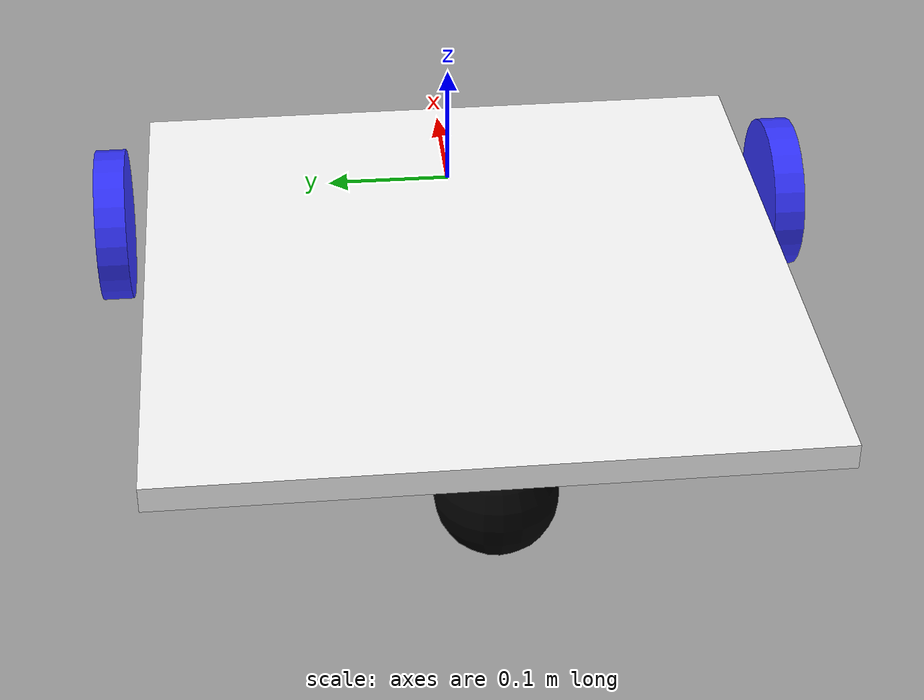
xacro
<?xml version="1.0"?>
<robot xmlns:xacro="http://www.ros.org/wiki/xacro" >

    <xacro:include filename="inertial_macros.xacro"/>

    <material name="white">
        <color rgba="1 1 1 1" />
    </material>

    <material name="orange">
        <color rgba="1 0.3 0.1 1" />
    </material>

    <material name="blue">
        <color rgba="0.2 0.2 1 1" />
    </material>

    <material name="black">
        <color rgba="0 0 0 1" />
    </material>

    <material name="red">
        <color rgba="1 0 0 1"/>
    </material>

    <!-- BASE LINK -->

    <link name="base_link">

    </link>

    <!-- BASE_FOOTPRINT LINK -->

    <joint name="base_footprint_joint" type="fixed">
        <parent link="base_link"/>
        <child link="base_footprint"/>
        <origin xyz="0 0 0" rpy="0 0 0"/>
    </joint>

    <link name="base_footprint">
    </link>

    <!-- CHASSIS LINK-->

    <joint name="chassis_joint" type="fixed">
        <parent link="base_link" />
        <child link="chassis"/>
        <origin xyz="0 0 0" />
    </joint>

    <link name="chassis">
        <visual>
            <origin xyz="-0.15 0 0" />
            <geometry>
                <box size="0.5 0.5 0.02" />
            </geometry>
            <material name="white" />
        </visual>
        <collision>
            <origin xyz="-0.15 0 0.0" />
            <geometry>
                <box size="0.5 0.5 0.02" />
            </geometry>
        </collision>
        <xacro:inertial_box mass="5" x="0.5" y="0.5" z="0.2">
            <origin xyz="-0.15 0 0.2" rpy="0 0 0"/>
        </xacro:inertial_box>

    </link>

    <gazebo reference="chassis">
        <material>Gazebo/White</material>
    </gazebo>

    <!-- LEFT WHEEL LINK-->

    <joint name="left_wheel_joint" type="continuous">
        <parent link="base_link"/>"
        <child link="left_wheel"/>
        <origin xyz="0 0.28 -0.03" rpy="-${pi/2} 0 0"/>
        <axis xyz="0 0 1"/>
    </joint>

    <link name="left_wheel">
        <visual>
            <geometry>
                <cylinder radius="0.0625" length="0.025"/>
            </geometry>
            <material name="blue"/>
        </visual>
        <collision>
            <geometry>
                <sphere radius="0.0625"/>
            </geometry>
        </collision>
        <xacro:inertial_cylinder mass="0.1" length="0.025" radius="0.0625">
            <origin xyz="0 0 0" rpy="0 0 0"/>
        </xacro:inertial_cylinder>
    </link>

    <gazebo reference="left_wheel">
        <material>Gazebo/Blue</material>
    </gazebo>

    <!-- RIGHT WHEEL LINK-->

    <joint name="right_wheel_joint" type="continuous">
        <parent link="base_link"/>"
        <child link="right_wheel"/>
        <origin xyz="0 -0.28 -0.03" rpy="${pi/2} 0 0"/>
        <axis xyz="0 0 -1"/>
    </joint>

    <link name="right_wheel">
        <visual>
            <geometry>
                <cylinder radius="0.0625" length="0.025"/>
            </geometry>
            <material name="blue"/>
        </visual>
        <collision>
            <geometry>
                <sphere radius="0.0625"/>
            </geometry>
        </collision>
        <xacro:inertial_cylinder mass="0.1" length="0.025" radius="0.0625">
            <origin xyz="0 0 0" rpy="0 0 0"/>
        </xacro:inertial_cylinder>
    </link>

     <gazebo reference="right_wheel">
        <material>Gazebo/Blue</material>
    </gazebo>

    <!-- CASTER WHEEL LINK-->

    <joint name="caster_wheel_joint" type="fixed">
        <parent link="chassis"/>
        <child link="caster_wheel"/>
        <origin xyz="-0.36 0 -0.045" />
    </joint>

    <link name="caster_wheel">
        <visual>
            <geometry>
                <sphere radius="0.045"/>
            </geometry>
            <material name="black"/>
        </visual>
        <collision>
            <geometry>
                <sphere radius="0.045"/>
            </geometry>
        </collision>
        <xacro:inertial_sphere mass="0.1" radius="0.045">
            <origin xyz="0 0 0" rpy="0 0 0"/>
        </xacro:inertial_sphere>
    </link>

     <gazebo reference="caster_wheel">
        <material>Gazebo/Black</material>
        <mu1 value="0.001"/>
        <mu2 value="0.001"/>
    </gazebo>

</robot>
